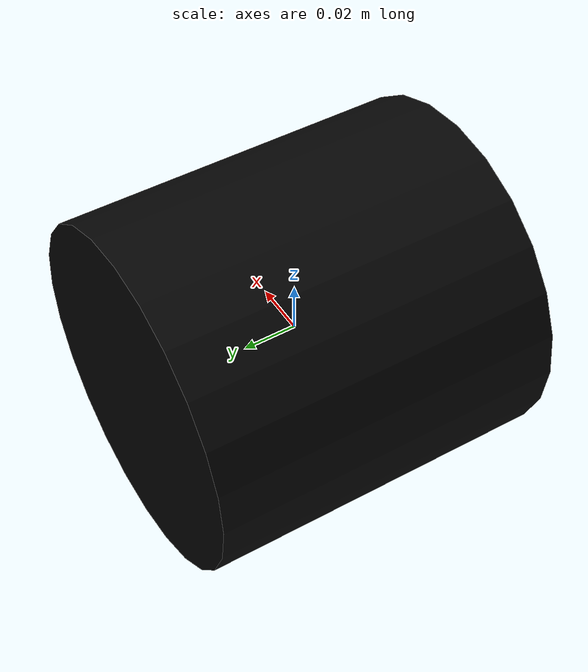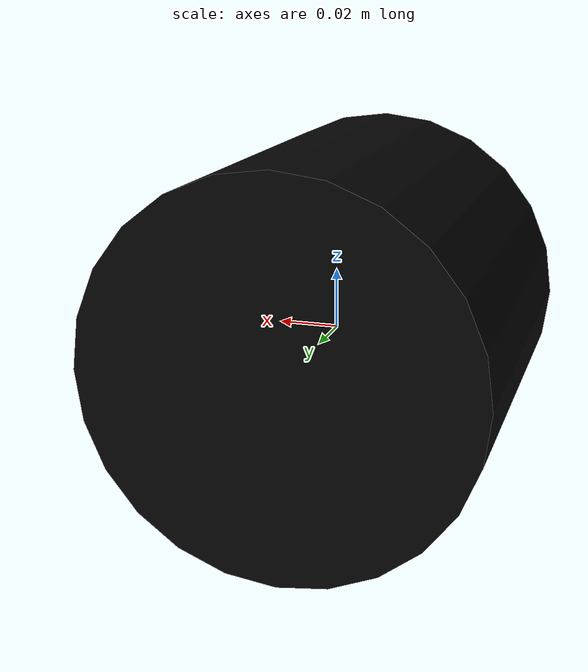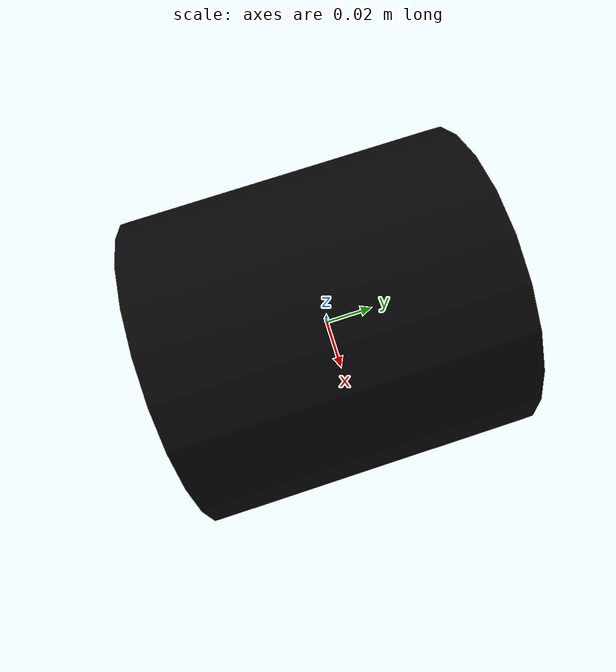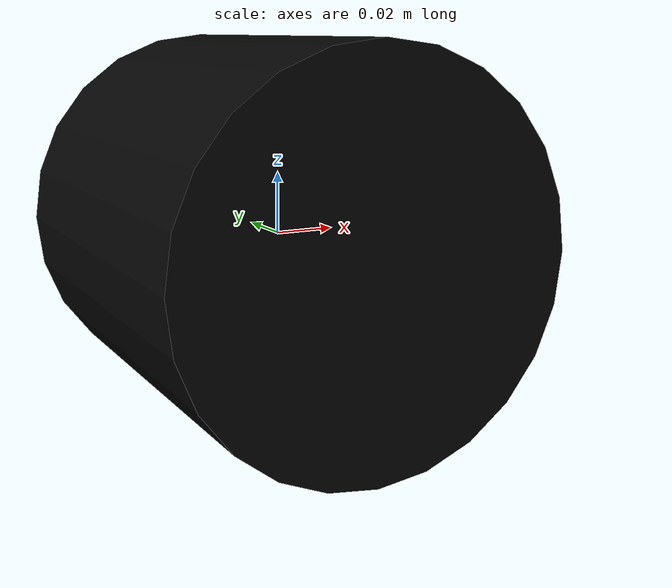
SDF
<?xml version="1.0" encoding="UTF-8"?>
<sdf version='1.9'>
  <model name='pipe_led'>
    <static>true</static>
    <link name='pipe_led'>
      <pose>0 0 0 1.57 0 0</pose>
      <collision name='pipe_led_collision'>
        <geometry>
          <cylinder>
            <radius>0.064</radius>
            <length>0.12906</length>
          </cylinder>
        </geometry>
      </collision>

      <visual name='pipe_led_visual'>
        <geometry>
          <cylinder>
            <radius>0.064</radius>
            <length>0.12906</length>
          </cylinder>
        </geometry>
        <material>
          <ambient>0.02 0.02 0.02 1</ambient>
          <diffuse>0.02 0.02 0.02 1</diffuse>
          <specular>0 0 0 1</specular>
          <emissive>0 0 0 1</emissive>
        </material>
      </visual>
    </link>

    <plugin filename="libgz_led_plugin.so" name="gz::sim::systems::LedPlugin">
      <startup_mode>off</startup_mode>

      <led name="led">
        <visual_name>pipe_led::pipe_led_visual</visual_name>
        <default_state>
          <color>0 0 0 1</color>
          <intensity>0.0</intensity>
        </default_state>
      </led>

      <mode name='off'>
        <step always_on='true'><color>0 0 0 1</color></step>
      </mode>

      <mode name='steady_red'>
        <step always_on='true'><color>1 0 0 1</color></step>
      </mode>

      <mode name='steady_green'>
        <step always_on='true'><color>0 1 0 1</color></step>
      </mode>
    </plugin>
  </model>
</sdf>
